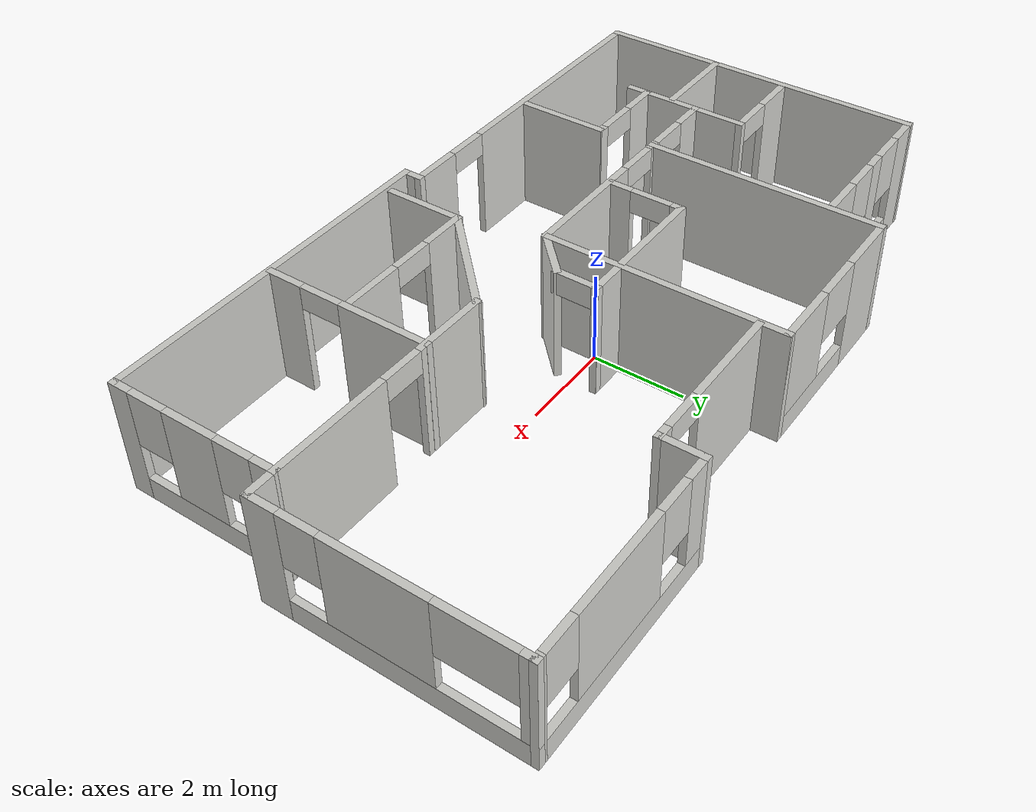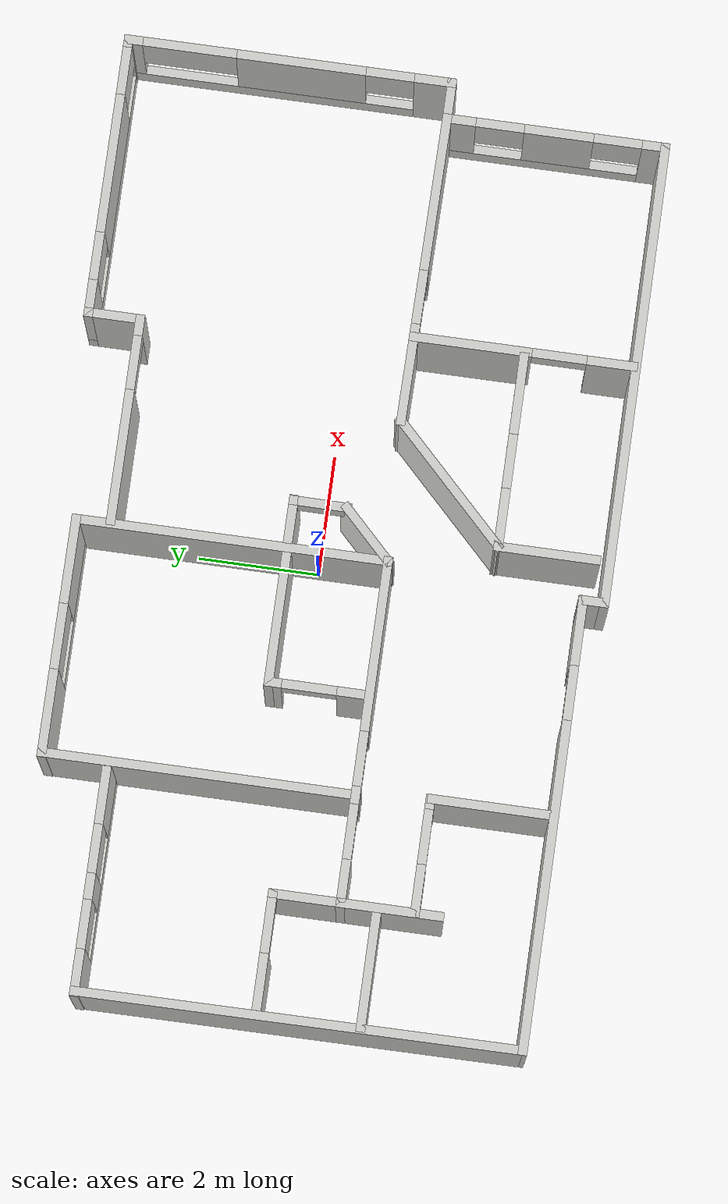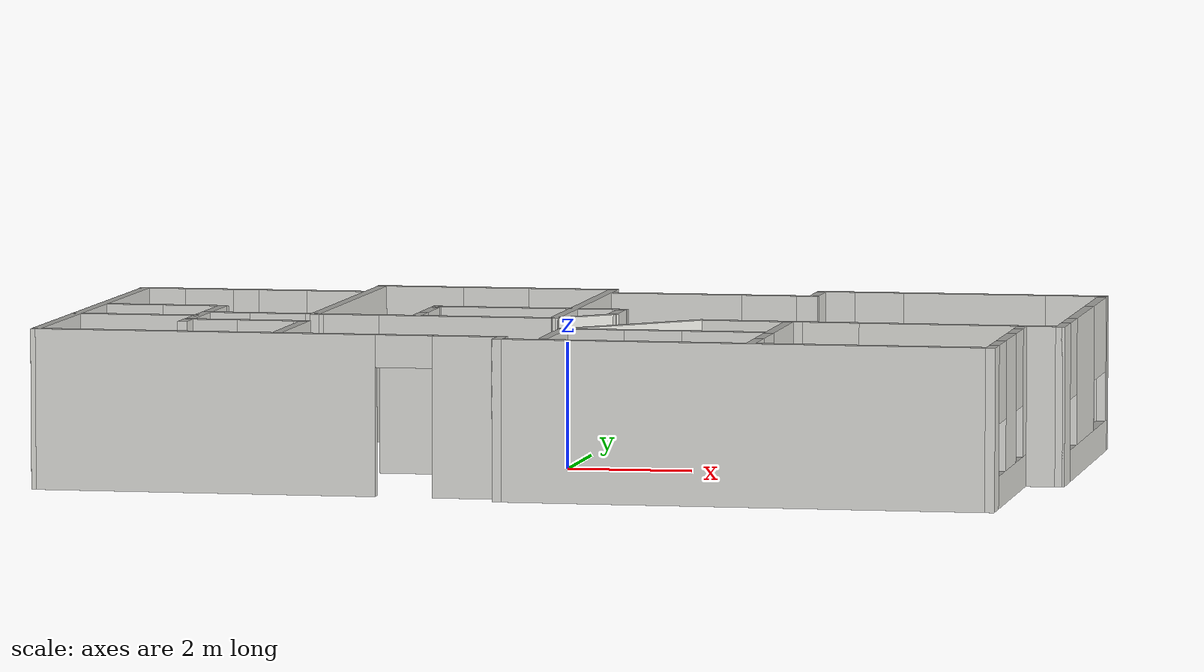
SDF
<?xml version='1.0'?>
<sdf version='1.7'>
  <model name='house1'>
    <pose>0.205163 -0.226995 0 0 -0 0</pose>
    <link name='Wall_0'>
      <collision name='Wall_0_Collision'>
        <geometry>
          <box>
            <size>7.38808 0.15 2.5</size>
          </box>
        </geometry>
        <pose>0 0 1.25 0 -0 0</pose>
      </collision>
      <visual name='Wall_0_Visual'>
        <pose>0 0 1.25 0 -0 0</pose>
        <geometry>
          <box>
            <size>7.38808 0.15 2.5</size>
          </box>
        </geometry>
        <material>
          <script>
            <uri>file://media/materials/scripts/gazebo.material</uri>
            <name>Gazebo/CeilingTiled</name>
          </script>
          <ambient>1 1 1 1</ambient>
        </material>
        <meta>
          <layer>0</layer>
        </meta>
      </visual>
      <pose>-7.76909 -0.505971 0 0 -0 -1.56603</pose>
    </link>
    <link name='Wall_11'>
      <collision name='Wall_11_Collision'>
        <geometry>
          <box>
            <size>1.25 0.15 2.5</size>
          </box>
        </geometry>
        <pose>0 0 1.25 0 -0 0</pose>
      </collision>
      <visual name='Wall_11_Visual'>
        <pose>0 0 1.25 0 -0 0</pose>
        <geometry>
          <box>
            <size>1.25 0.15 2.5</size>
          </box>
        </geometry>
        <material>
          <script>
            <uri>file://media/materials/scripts/gazebo.material</uri>
            <name>Gazebo/CeilingTiled</name>
          </script>
          <ambient>1 1 1 1</ambient>
        </material>
        <meta>
          <layer>0</layer>
        </meta>
      </visual>
      <pose>0.186971 -0.526067 0 0 -0 0.785398</pose>
    </link>
    <link name='Wall_13'>
      <pose>-3.00194 -0.914976 0 0 -0 3.14159</pose>
      <visual name='Wall_13_Visual_0'>
        <pose>-1.43905 0 1.25 0 -0 0</pose>
        <geometry>
          <box>
            <size>2.87189 0.15 2.5</size>
          </box>
        </geometry>
        <material>
          <script>
            <uri>file://media/materials/scripts/gazebo.material</uri>
            <name>Gazebo/CeilingTiled</name>
          </script>
          <ambient>1 1 1 1</ambient>
        </material>
        <meta>
          <layer>0</layer>
        </meta>
      </visual>
      <collision name='Wall_13_Collision_0'>
        <geometry>
          <box>
            <size>2.87189 0.15 2.5</size>
          </box>
        </geometry>
        <pose>-1.43905 0 1.25 0 -0 0</pose>
      </collision>
      <visual name='Wall_13_Visual_1'>
        <pose>1.04201 0 1.25 0 -0 0</pose>
        <geometry>
          <box>
            <size>0.29025 0.15 2.5</size>
          </box>
        </geometry>
        <material>
          <script>
            <uri>file://media/materials/scripts/gazebo.material</uri>
            <name>Gazebo/CeilingTiled</name>
          </script>
          <ambient>1 1 1 1</ambient>
        </material>
        <meta>
          <layer>0</layer>
        </meta>
      </visual>
      <collision name='Wall_13_Collision_1'>
        <geometry>
          <box>
            <size>0.29025 0.15 2.5</size>
          </box>
        </geometry>
        <pose>1.04201 0 1.25 0 -0 0</pose>
      </collision>
      <visual name='Wall_13_Visual_2'>
        <pose>2.48107 0 1.25 0 -0 0</pose>
        <geometry>
          <box>
            <size>0.78786 0.15 2.5</size>
          </box>
        </geometry>
        <material>
          <script>
            <uri>file://media/materials/scripts/gazebo.material</uri>
            <name>Gazebo/CeilingTiled</name>
          </script>
          <ambient>1 1 1 1</ambient>
        </material>
        <meta>
          <layer>0</layer>
        </meta>
      </visual>
      <collision name='Wall_13_Collision_2'>
        <geometry>
          <box>
            <size>0.78786 0.15 2.5</size>
          </box>
        </geometry>
        <pose>2.48107 0 1.25 0 -0 0</pose>
      </collision>
      <visual name='Wall_13_Visual_3'>
        <pose>0.44689 0 2.25 0 -0 0</pose>
        <geometry>
          <box>
            <size>0.9 0.15 0.5</size>
          </box>
        </geometry>
        <material>
          <script>
            <uri>file://media/materials/scripts/gazebo.material</uri>
            <name>Gazebo/CeilingTiled</name>
          </script>
          <ambient>1 1 1 1</ambient>
        </material>
        <meta>
          <layer>0</layer>
        </meta>
      </visual>
      <collision name='Wall_13_Collision_3'>
        <geometry>
          <box>
            <size>0.9 0.15 0.5</size>
          </box>
        </geometry>
        <pose>0.44689 0 2.25 0 -0 0</pose>
      </collision>
      <visual name='Wall_13_Visual_4'>
        <pose>1.63714 0 2.25 0 -0 0</pose>
        <geometry>
          <box>
            <size>0.9 0.15 0.5</size>
          </box>
        </geometry>
        <material>
          <script>
            <uri>file://media/materials/scripts/gazebo.material</uri>
            <name>Gazebo/CeilingTiled</name>
          </script>
          <ambient>1 1 1 1</ambient>
        </material>
        <meta>
          <layer>0</layer>
        </meta>
      </visual>
      <collision name='Wall_13_Collision_4'>
        <geometry>
          <box>
            <size>0.9 0.15 0.5</size>
          </box>
        </geometry>
        <pose>1.63714 0 2.25 0 -0 0</pose>
      </collision>
    </link>
    <link name='Wall_14'>
      <collision name='Wall_14_Collision'>
        <geometry>
          <box>
            <size>1.25 0.15 2.5</size>
          </box>
        </geometry>
        <pose>0 0 1.25 0 -0 0</pose>
      </collision>
      <visual name='Wall_14_Visual'>
        <pose>0 0 1.25 0 -0 0</pose>
        <geometry>
          <box>
            <size>1.25 0.15 2.5</size>
          </box>
        </geometry>
        <material>
          <script>
            <uri>file://media/materials/scripts/gazebo.material</uri>
            <name>Gazebo/CeilingTiled</name>
          </script>
          <ambient>1 1 1 1</ambient>
        </material>
        <meta>
          <layer>0</layer>
        </meta>
      </visual>
      <pose>-5.80194 -0.364976 0 0 -0 1.5708</pose>
    </link>
    <link name='Wall_15'>
      <pose>-6.72694 0.185024 0 0 -0 3.14159</pose>
      <visual name='Wall_15_Visual_0'>
        <pose>-0.929142 0 1.25 0 -0 0</pose>
        <geometry>
          <box>
            <size>0.141715 0.15 2.5</size>
          </box>
        </geometry>
        <material>
          <script>
            <uri>file://media/materials/scripts/gazebo.material</uri>
            <name>Gazebo/CeilingTiled</name>
          </script>
          <ambient>1 1 1 1</ambient>
        </material>
        <meta>
          <layer>0</layer>
        </meta>
      </visual>
      <collision name='Wall_15_Collision_0'>
        <geometry>
          <box>
            <size>0.141715 0.15 2.5</size>
          </box>
        </geometry>
        <pose>-0.929142 0 1.25 0 -0 0</pose>
      </collision>
      <visual name='Wall_15_Visual_1'>
        <pose>0.520858 0 1.25 0 -0 0</pose>
        <geometry>
          <box>
            <size>0.958285 0.15 2.5</size>
          </box>
        </geometry>
        <material>
          <script>
            <uri>file://media/materials/scripts/gazebo.material</uri>
            <name>Gazebo/CeilingTiled</name>
          </script>
          <ambient>1 1 1 1</ambient>
        </material>
        <meta>
          <layer>0</layer>
        </meta>
      </visual>
      <collision name='Wall_15_Collision_1'>
        <geometry>
          <box>
            <size>0.958285 0.15 2.5</size>
          </box>
        </geometry>
        <pose>0.520858 0 1.25 0 -0 0</pose>
      </collision>
      <visual name='Wall_15_Visual_2'>
        <pose>-0.408285 0 2.25 0 -0 0</pose>
        <geometry>
          <box>
            <size>0.9 0.15 0.5</size>
          </box>
        </geometry>
        <material>
          <script>
            <uri>file://media/materials/scripts/gazebo.material</uri>
            <name>Gazebo/CeilingTiled</name>
          </script>
          <ambient>1 1 1 1</ambient>
        </material>
        <meta>
          <layer>0</layer>
        </meta>
      </visual>
      <collision name='Wall_15_Collision_2'>
        <geometry>
          <box>
            <size>0.9 0.15 0.5</size>
          </box>
        </geometry>
        <pose>-0.408285 0 2.25 0 -0 0</pose>
      </collision>
    </link>
    <link name='Wall_17'>
      <collision name='Wall_17_Collision'>
        <geometry>
          <box>
            <size>1.75 0.15 2.5</size>
          </box>
        </geometry>
        <pose>0 0 1.25 0 -0 0</pose>
      </collision>
      <visual name='Wall_17_Visual'>
        <pose>0 0 1.25 0 -0 0</pose>
        <geometry>
          <box>
            <size>1.75 0.15 2.5</size>
          </box>
        </geometry>
        <material>
          <script>
            <uri>file://media/materials/scripts/gazebo.material</uri>
            <name>Gazebo/CeilingTiled</name>
          </script>
          <ambient>1 1 1 1</ambient>
        </material>
        <meta>
          <layer>0</layer>
        </meta>
      </visual>
      <pose>-5.80194 -1.71498 0 0 -0 -1.5708</pose>
    </link>
    <link name='Wall_19'>
      <collision name='Wall_19_Collision'>
        <geometry>
          <box>
            <size>2 0.15 2.5</size>
          </box>
        </geometry>
        <pose>0 0 1.25 0 -0 0</pose>
      </collision>
      <visual name='Wall_19_Visual'>
        <pose>0 0 1.25 0 -0 0</pose>
        <geometry>
          <box>
            <size>2 0.15 2.5</size>
          </box>
        </geometry>
        <material>
          <script>
            <uri>file://media/materials/scripts/gazebo.material</uri>
            <name>Gazebo/CeilingTiled</name>
          </script>
          <ambient>1 1 1 1</ambient>
        </material>
        <meta>
          <layer>0</layer>
        </meta>
      </visual>
      <pose>-6.81077 -1.50781 0 0 -0 0</pose>
    </link>
    <link name='Wall_2'>
      <pose>-5.99784 3.11303 0 0 -0 0</pose>
      <visual name='Wall_2_Visual_0'>
        <pose>-1.48801 0 1.25 0 -0 0</pose>
        <geometry>
          <box>
            <size>0.773978 0.15 2.5</size>
          </box>
        </geometry>
        <material>
          <script>
            <uri>file://media/materials/scripts/gazebo.material</uri>
            <name>Gazebo/CeilingTiled</name>
          </script>
          <ambient>1 1 1 1</ambient>
        </material>
        <meta>
          <layer>0</layer>
        </meta>
      </visual>
      <collision name='Wall_2_Collision_0'>
        <geometry>
          <box>
            <size>0.773978 0.15 2.5</size>
          </box>
        </geometry>
        <pose>-1.48801 0 1.25 0 -0 0</pose>
      </collision>
      <visual name='Wall_2_Visual_1'>
        <pose>0.386989 0 0.25 0 -0 0</pose>
        <geometry>
          <box>
            <size>2.97602 0.15 0.5</size>
          </box>
        </geometry>
        <material>
          <script>
            <uri>file://media/materials/scripts/gazebo.material</uri>
            <name>Gazebo/CeilingTiled</name>
          </script>
          <ambient>1 1 1 1</ambient>
        </material>
        <meta>
          <layer>0</layer>
        </meta>
      </visual>
      <collision name='Wall_2_Collision_1'>
        <geometry>
          <box>
            <size>2.97602 0.15 0.5</size>
          </box>
        </geometry>
        <pose>0.386989 0 0.25 0 -0 0</pose>
      </collision>
      <visual name='Wall_2_Visual_2'>
        <pose>-0.086059 0 1.5 0 -0 0</pose>
        <geometry>
          <box>
            <size>0.429925 0.15 2</size>
          </box>
        </geometry>
        <material>
          <script>
            <uri>file://media/materials/scripts/gazebo.material</uri>
            <name>Gazebo/CeilingTiled</name>
          </script>
          <ambient>1 1 1 1</ambient>
        </material>
        <meta>
          <layer>0</layer>
        </meta>
      </visual>
      <collision name='Wall_2_Collision_2'>
        <geometry>
          <box>
            <size>0.429925 0.15 2</size>
          </box>
        </geometry>
        <pose>-0.086059 0 1.5 0 -0 0</pose>
      </collision>
      <visual name='Wall_2_Visual_3'>
        <pose>1.40195 0 1.5 0 -0 0</pose>
        <geometry>
          <box>
            <size>0.946097 0.15 2</size>
          </box>
        </geometry>
        <material>
          <script>
            <uri>file://media/materials/scripts/gazebo.material</uri>
            <name>Gazebo/CeilingTiled</name>
          </script>
          <ambient>1 1 1 1</ambient>
        </material>
        <meta>
          <layer>0</layer>
        </meta>
      </visual>
      <collision name='Wall_2_Collision_3'>
        <geometry>
          <box>
            <size>0.946097 0.15 2</size>
          </box>
        </geometry>
        <pose>1.40195 0 1.5 0 -0 0</pose>
      </collision>
      <visual name='Wall_2_Visual_4'>
        <pose>-0.701022 0 1.9 0 -0 0</pose>
        <geometry>
          <box>
            <size>0.8 0.15 1.2</size>
          </box>
        </geometry>
        <material>
          <script>
            <uri>file://media/materials/scripts/gazebo.material</uri>
            <name>Gazebo/CeilingTiled</name>
          </script>
          <ambient>1 1 1 1</ambient>
        </material>
        <meta>
          <layer>0</layer>
        </meta>
      </visual>
      <collision name='Wall_2_Collision_4'>
        <geometry>
          <box>
            <size>0.8 0.15 1.2</size>
          </box>
        </geometry>
        <pose>-0.701022 0 1.9 0 -0 0</pose>
      </collision>
      <visual name='Wall_2_Visual_5'>
        <pose>0.528903 0 1.9 0 -0 0</pose>
        <geometry>
          <box>
            <size>0.8 0.15 1.2</size>
          </box>
        </geometry>
        <material>
          <script>
            <uri>file://media/materials/scripts/gazebo.material</uri>
            <name>Gazebo/CeilingTiled</name>
          </script>
          <ambient>1 1 1 1</ambient>
        </material>
        <meta>
          <layer>0</layer>
        </meta>
      </visual>
      <collision name='Wall_2_Collision_5'>
        <geometry>
          <box>
            <size>0.8 0.15 1.2</size>
          </box>
        </geometry>
        <pose>0.528903 0 1.9 0 -0 0</pose>
      </collision>
    </link>
    <link name='Wall_21'>
      <pose>-4.86727 -2.1173 0 0 -0 0</pose>
      <visual name='Wall_21_Visual_0'>
        <pose>-0.570282 0 1.25 0 -0 0</pose>
        <geometry>
          <box>
            <size>0.859435 0.15 2.5</size>
          </box>
        </geometry>
        <material>
          <script>
            <uri>file://media/materials/scripts/gazebo.material</uri>
            <name>Gazebo/CeilingTiled</name>
          </script>
          <ambient>1 1 1 1</ambient>
        </material>
        <meta>
          <layer>0</layer>
        </meta>
      </visual>
      <collision name='Wall_21_Collision_0'>
        <geometry>
          <box>
            <size>0.859435 0.15 2.5</size>
          </box>
        </geometry>
        <pose>-0.570282 0 1.25 0 -0 0</pose>
      </collision>
      <visual name='Wall_21_Visual_1'>
        <pose>0.879718 0 1.25 0 -0 0</pose>
        <geometry>
          <box>
            <size>0.240565 0.15 2.5</size>
          </box>
        </geometry>
        <material>
          <script>
            <uri>file://media/materials/scripts/gazebo.material</uri>
            <name>Gazebo/CeilingTiled</name>
          </script>
          <ambient>1 1 1 1</ambient>
        </material>
        <meta>
          <layer>0</layer>
        </meta>
      </visual>
      <collision name='Wall_21_Collision_1'>
        <geometry>
          <box>
            <size>0.240565 0.15 2.5</size>
          </box>
        </geometry>
        <pose>0.879718 0 1.25 0 -0 0</pose>
      </collision>
      <visual name='Wall_21_Visual_2'>
        <pose>0.309435 0 2.25 0 -0 0</pose>
        <geometry>
          <box>
            <size>0.9 0.15 0.5</size>
          </box>
        </geometry>
        <material>
          <script>
            <uri>file://media/materials/scripts/gazebo.material</uri>
            <name>Gazebo/CeilingTiled</name>
          </script>
          <ambient>1 1 1 1</ambient>
        </material>
        <meta>
          <layer>0</layer>
        </meta>
      </visual>
      <collision name='Wall_21_Collision_2'>
        <geometry>
          <box>
            <size>0.9 0.15 0.5</size>
          </box>
        </geometry>
        <pose>0.309435 0 2.25 0 -0 0</pose>
      </collision>
    </link>
    <link name='Wall_23'>
      <collision name='Wall_23_Collision'>
        <geometry>
          <box>
            <size>2 0.15 2.5</size>
          </box>
        </geometry>
        <pose>0 0 1.25 0 -0 0</pose>
      </collision>
      <visual name='Wall_23_Visual'>
        <pose>0 0 1.25 0 -0 0</pose>
        <geometry>
          <box>
            <size>2 0.15 2.5</size>
          </box>
        </geometry>
        <material>
          <script>
            <uri>file://media/materials/scripts/gazebo.material</uri>
            <name>Gazebo/CeilingTiled</name>
          </script>
          <ambient>1 1 1 1</ambient>
        </material>
        <meta>
          <layer>0</layer>
        </meta>
      </visual>
      <pose>-3.94116 -3.06501 0 0 -0 -1.5708</pose>
    </link>
    <link name='Wall_25'>
      <pose>-4.07684 -4.12497 0 0 -0 0</pose>
      <visual name='Wall_25_Visual_0'>
        <pose>-1.02494 0 1.25 0 -0 0</pose>
        <geometry>
          <box>
            <size>5.45011 0.15 2.5</size>
          </box>
        </geometry>
        <material>
          <script>
            <uri>file://media/materials/scripts/gazebo.material</uri>
            <name>Gazebo/CeilingTiled</name>
          </script>
          <ambient>1 1 1 1</ambient>
        </material>
        <meta>
          <layer>0</layer>
        </meta>
      </visual>
      <collision name='Wall_25_Collision_0'>
        <geometry>
          <box>
            <size>5.45011 0.15 2.5</size>
          </box>
        </geometry>
        <pose>-1.02494 0 1.25 0 -0 0</pose>
      </collision>
      <visual name='Wall_25_Visual_1'>
        <pose>3.17506 0 1.25 0 -0 0</pose>
        <geometry>
          <box>
            <size>1.14989 0.15 2.5</size>
          </box>
        </geometry>
        <material>
          <script>
            <uri>file://media/materials/scripts/gazebo.material</uri>
            <name>Gazebo/CeilingTiled</name>
          </script>
          <ambient>1 1 1 1</ambient>
        </material>
        <meta>
          <layer>0</layer>
        </meta>
      </visual>
      <collision name='Wall_25_Collision_1'>
        <geometry>
          <box>
            <size>1.14989 0.15 2.5</size>
          </box>
        </geometry>
        <pose>3.17506 0 1.25 0 -0 0</pose>
      </collision>
      <visual name='Wall_25_Visual_2'>
        <pose>2.15011 0 2.25 0 -0 0</pose>
        <geometry>
          <box>
            <size>0.9 0.15 0.5</size>
          </box>
        </geometry>
        <material>
          <script>
            <uri>file://media/materials/scripts/gazebo.material</uri>
            <name>Gazebo/CeilingTiled</name>
          </script>
          <ambient>1 1 1 1</ambient>
        </material>
        <meta>
          <layer>0</layer>
        </meta>
      </visual>
      <collision name='Wall_25_Collision_2'>
        <geometry>
          <box>
            <size>0.9 0.15 0.5</size>
          </box>
        </geometry>
        <pose>2.15011 0 2.25 0 -0 0</pose>
      </collision>
    </link>
    <link name='Wall_29'>
      <collision name='Wall_29_Collision'>
        <geometry>
          <box>
            <size>0.5 0.15 2.5</size>
          </box>
        </geometry>
        <pose>0 0 1.25 0 -0 0</pose>
      </collision>
      <visual name='Wall_29_Visual'>
        <pose>0 0 1.25 0 -0 0</pose>
        <geometry>
          <box>
            <size>0.5 0.15 2.5</size>
          </box>
        </geometry>
        <material>
          <script>
            <uri>file://media/materials/scripts/gazebo.material</uri>
            <name>Gazebo/CeilingTiled</name>
          </script>
          <ambient>1 1 1 1</ambient>
        </material>
        <meta>
          <layer>0</layer>
        </meta>
      </visual>
      <pose>-0.401838 -4.29997 0 0 -0 -1.5708</pose>
    </link>
    <link name='Wall_30'>
      <collision name='Wall_30_Collision'>
        <geometry>
          <box>
            <size>7.75 0.15 2.5</size>
          </box>
        </geometry>
        <pose>0 0 1.25 0 -0 0</pose>
      </collision>
      <visual name='Wall_30_Visual'>
        <pose>0 0 1.25 0 -0 0</pose>
        <geometry>
          <box>
            <size>7.75 0.15 2.5</size>
          </box>
        </geometry>
        <material>
          <script>
            <uri>file://media/materials/scripts/gazebo.material</uri>
            <name>Gazebo/CeilingTiled</name>
          </script>
          <ambient>1 1 1 1</ambient>
        </material>
        <meta>
          <layer>0</layer>
        </meta>
      </visual>
      <pose>3.39816 -4.47497 0 0 -0 0</pose>
    </link>
    <link name='Wall_31'>
      <pose>7.198 -2.67499 0 0 -0 1.57089</pose>
      <visual name='Wall_31_Visual_0'>
        <pose>-1.64864 0 1.25 0 -0 0</pose>
        <geometry>
          <box>
            <size>0.452715 0.15 2.5</size>
          </box>
        </geometry>
        <material>
          <script>
            <uri>file://media/materials/scripts/gazebo.material</uri>
            <name>Gazebo/CeilingTiled</name>
          </script>
          <ambient>1 1 1 1</ambient>
        </material>
        <meta>
          <layer>0</layer>
        </meta>
      </visual>
      <collision name='Wall_31_Collision_0'>
        <geometry>
          <box>
            <size>0.452715 0.15 2.5</size>
          </box>
        </geometry>
        <pose>-1.64864 0 1.25 0 -0 0</pose>
      </collision>
      <visual name='Wall_31_Visual_1'>
        <pose>0.226358 0 0.25 0 -0 0</pose>
        <geometry>
          <box>
            <size>3.29729 0.15 0.5</size>
          </box>
        </geometry>
        <material>
          <script>
            <uri>file://media/materials/scripts/gazebo.material</uri>
            <name>Gazebo/CeilingTiled</name>
          </script>
          <ambient>1 1 1 1</ambient>
        </material>
        <meta>
          <layer>0</layer>
        </meta>
      </visual>
      <collision name='Wall_31_Collision_1'>
        <geometry>
          <box>
            <size>3.29729 0.15 0.5</size>
          </box>
        </geometry>
        <pose>0.226358 0 0.25 0 -0 0</pose>
      </collision>
      <visual name='Wall_31_Visual_2'>
        <pose>-0.050794 0 1.5 0 -0 0</pose>
        <geometry>
          <box>
            <size>1.14298 0.15 2</size>
          </box>
        </geometry>
        <material>
          <script>
            <uri>file://media/materials/scripts/gazebo.material</uri>
            <name>Gazebo/CeilingTiled</name>
          </script>
          <ambient>1 1 1 1</ambient>
        </material>
        <meta>
          <layer>0</layer>
        </meta>
      </visual>
      <collision name='Wall_31_Collision_2'>
        <geometry>
          <box>
            <size>1.14298 0.15 2</size>
          </box>
        </geometry>
        <pose>-0.050794 0 1.5 0 -0 0</pose>
      </collision>
      <visual name='Wall_31_Visual_3'>
        <pose>1.59785 0 1.5 0 -0 0</pose>
        <geometry>
          <box>
            <size>0.554303 0.15 2</size>
          </box>
        </geometry>
        <material>
          <script>
            <uri>file://media/materials/scripts/gazebo.material</uri>
            <name>Gazebo/CeilingTiled</name>
          </script>
          <ambient>1 1 1 1</ambient>
        </material>
        <meta>
          <layer>0</layer>
        </meta>
      </visual>
      <collision name='Wall_31_Collision_3'>
        <geometry>
          <box>
            <size>0.554303 0.15 2</size>
          </box>
        </geometry>
        <pose>1.59785 0 1.5 0 -0 0</pose>
      </collision>
      <visual name='Wall_31_Visual_4'>
        <pose>-1.02229 0 1.9 0 -0 0</pose>
        <geometry>
          <box>
            <size>0.8 0.15 1.2</size>
          </box>
        </geometry>
        <material>
          <script>
            <uri>file://media/materials/scripts/gazebo.material</uri>
            <name>Gazebo/CeilingTiled</name>
          </script>
          <ambient>1 1 1 1</ambient>
        </material>
        <meta>
          <layer>0</layer>
        </meta>
      </visual>
      <collision name='Wall_31_Collision_4'>
        <geometry>
          <box>
            <size>0.8 0.15 1.2</size>
          </box>
        </geometry>
        <pose>-1.02229 0 1.9 0 -0 0</pose>
      </collision>
      <visual name='Wall_31_Visual_5'>
        <pose>0.920697 0 1.9 0 -0 0</pose>
        <geometry>
          <box>
            <size>0.8 0.15 1.2</size>
          </box>
        </geometry>
        <material>
          <script>
            <uri>file://media/materials/scripts/gazebo.material</uri>
            <name>Gazebo/CeilingTiled</name>
          </script>
          <ambient>1 1 1 1</ambient>
        </material>
        <meta>
          <layer>0</layer>
        </meta>
      </visual>
      <collision name='Wall_31_Collision_5'>
        <geometry>
          <box>
            <size>0.8 0.15 1.2</size>
          </box>
        </geometry>
        <pose>0.920697 0 1.9 0 -0 0</pose>
      </collision>
    </link>
    <link name='Wall_32'>
      <pose>4.65734 -0.842505 0 0 -0 3.1288</pose>
      <visual name='Wall_32_Visual_0'>
        <pose>-1.29738 0 1.25 0 -0 0</pose>
        <geometry>
          <box>
            <size>2.63693 0.15 2.5</size>
          </box>
        </geometry>
        <material>
          <script>
            <uri>file://media/materials/scripts/gazebo.material</uri>
            <name>Gazebo/CeilingTiled</name>
          </script>
          <ambient>1 1 1 1</ambient>
        </material>
        <meta>
          <layer>0</layer>
        </meta>
      </visual>
      <collision name='Wall_32_Collision_0'>
        <geometry>
          <box>
            <size>2.63693 0.15 2.5</size>
          </box>
        </geometry>
        <pose>-1.29738 0 1.25 0 -0 0</pose>
      </collision>
      <visual name='Wall_32_Visual_1'>
        <pose>1.76847 0 1.25 0 -0 0</pose>
        <geometry>
          <box>
            <size>1.69476 0.15 2.5</size>
          </box>
        </geometry>
        <material>
          <script>
            <uri>file://media/materials/scripts/gazebo.material</uri>
            <name>Gazebo/CeilingTiled</name>
          </script>
          <ambient>1 1 1 1</ambient>
        </material>
        <meta>
          <layer>0</layer>
        </meta>
      </visual>
      <collision name='Wall_32_Collision_1'>
        <geometry>
          <box>
            <size>1.69476 0.15 2.5</size>
          </box>
        </geometry>
        <pose>1.76847 0 1.25 0 -0 0</pose>
      </collision>
      <visual name='Wall_32_Visual_2'>
        <pose>0.471089 0 2.25 0 -0 0</pose>
        <geometry>
          <box>
            <size>0.9 0.15 0.5</size>
          </box>
        </geometry>
        <material>
          <script>
            <uri>file://media/materials/scripts/gazebo.material</uri>
            <name>Gazebo/CeilingTiled</name>
          </script>
          <ambient>1 1 1 1</ambient>
        </material>
        <meta>
          <layer>0</layer>
        </meta>
      </visual>
      <collision name='Wall_32_Collision_2'>
        <geometry>
          <box>
            <size>0.9 0.15 0.5</size>
          </box>
        </geometry>
        <pose>0.471089 0 2.25 0 -0 0</pose>
      </collision>
    </link>
    <link name='Wall_33'>
      <collision name='Wall_33_Collision'>
        <geometry>
          <box>
            <size>2.75 0.15 2.5</size>
          </box>
        </geometry>
        <pose>0 0 1.25 0 -0 0</pose>
      </collision>
      <visual name='Wall_33_Visual'>
        <pose>0 0 1.25 0 -0 0</pose>
        <geometry>
          <box>
            <size>2.75 0.15 2.5</size>
          </box>
        </geometry>
        <material>
          <script>
            <uri>file://media/materials/scripts/gazebo.material</uri>
            <name>Gazebo/CeilingTiled</name>
          </script>
          <ambient>1 1 1 1</ambient>
        </material>
        <meta>
          <layer>0</layer>
        </meta>
      </visual>
      <pose>1.19784 -1.72951 0 0 -0 -2.35592</pose>
    </link>
    <link name='Wall_37'>
      <collision name='Wall_37_Collision'>
        <geometry>
          <box>
            <size>1.75 0.15 2.5</size>
          </box>
        </geometry>
        <pose>0 0 1.25 0 -0 0</pose>
      </collision>
      <visual name='Wall_37_Visual'>
        <pose>0 0 1.25 0 -0 0</pose>
        <geometry>
          <box>
            <size>1.75 0.15 2.5</size>
          </box>
        </geometry>
        <material>
          <script>
            <uri>file://media/materials/scripts/gazebo.material</uri>
            <name>Gazebo/CeilingTiled</name>
          </script>
          <ambient>1 1 1 1</ambient>
        </material>
        <meta>
          <layer>0</layer>
        </meta>
      </visual>
      <pose>0.278622 -3.44887 0 0 -0 -1.57106</pose>
    </link>
    <link name='Wall_39'>
      <collision name='Wall_39_Collision'>
        <geometry>
          <box>
            <size>0.75 0.15 2.5</size>
          </box>
        </geometry>
        <pose>0 0 1.25 0 -0 0</pose>
      </collision>
      <visual name='Wall_39_Visual'>
        <pose>0 0 1.25 0 -0 0</pose>
        <geometry>
          <box>
            <size>0.75 0.15 2.5</size>
          </box>
        </geometry>
        <material>
          <script>
            <uri>file://media/materials/scripts/gazebo.material</uri>
            <name>Gazebo/CeilingTiled</name>
          </script>
          <ambient>1 1 1 1</ambient>
        </material>
        <meta>
          <layer>0</layer>
        </meta>
      </visual>
      <pose>7.49784 -0.875005 0 0 -0 0</pose>
    </link>
    <link name='Wall_4'>
      <collision name='Wall_4_Collision'>
        <geometry>
          <box>
            <size>5.25083 0.15 2.5</size>
          </box>
        </geometry>
        <pose>0 0 1.25 0 -0 0</pose>
      </collision>
      <visual name='Wall_4_Visual'>
        <pose>0 0 1.25 0 -0 0</pose>
        <geometry>
          <box>
            <size>5.25083 0.15 2.5</size>
          </box>
        </geometry>
        <material>
          <script>
            <uri>file://media/materials/scripts/gazebo.material</uri>
            <name>Gazebo/CeilingTiled</name>
          </script>
          <ambient>1 1 1 1</ambient>
        </material>
        <meta>
          <layer>0</layer>
        </meta>
      </visual>
      <pose>-4.04529 1.63502 0 0 -0 -1.57077</pose>
    </link>
    <link name='Wall_40'>
      <pose>7.79784 1.8 0 0 -0 1.5708</pose>
      <visual name='Wall_40_Visual_0'>
        <pose>-2.40357 0 1.25 0 -0 0</pose>
        <geometry>
          <box>
            <size>0.692867 0.15 2.5</size>
          </box>
        </geometry>
        <material>
          <script>
            <uri>file://media/materials/scripts/gazebo.material</uri>
            <name>Gazebo/CeilingTiled</name>
          </script>
          <ambient>1 1 1 1</ambient>
        </material>
        <meta>
          <layer>0</layer>
        </meta>
      </visual>
      <collision name='Wall_40_Collision_0'>
        <geometry>
          <box>
            <size>0.692867 0.15 2.5</size>
          </box>
        </geometry>
        <pose>-2.40357 0 1.25 0 -0 0</pose>
      </collision>
      <visual name='Wall_40_Visual_1'>
        <pose>0.346434 0 0.25 0 -0 0</pose>
        <geometry>
          <box>
            <size>4.80713 0.15 0.5</size>
          </box>
        </geometry>
        <material>
          <script>
            <uri>file://media/materials/scripts/gazebo.material</uri>
            <name>Gazebo/CeilingTiled</name>
          </script>
          <ambient>1 1 1 1</ambient>
        </material>
        <meta>
          <layer>0</layer>
        </meta>
      </visual>
      <collision name='Wall_40_Collision_1'>
        <geometry>
          <box>
            <size>4.80713 0.15 0.5</size>
          </box>
        </geometry>
        <pose>0.346434 0 0.25 0 -0 0</pose>
      </collision>
      <visual name='Wall_40_Visual_2'>
        <pose>-0.18727 0 1.5 0 -0 0</pose>
        <geometry>
          <box>
            <size>2.13972 0.15 2</size>
          </box>
        </geometry>
        <material>
          <script>
            <uri>file://media/materials/scripts/gazebo.material</uri>
            <name>Gazebo/CeilingTiled</name>
          </script>
          <ambient>1 1 1 1</ambient>
        </material>
        <meta>
          <layer>0</layer>
        </meta>
      </visual>
      <collision name='Wall_40_Collision_2'>
        <geometry>
          <box>
            <size>2.13972 0.15 2</size>
          </box>
        </geometry>
        <pose>-0.18727 0 1.5 0 -0 0</pose>
      </collision>
      <visual name='Wall_40_Visual_3'>
        <pose>2.59321 0 1.5 0 -0 0</pose>
        <geometry>
          <box>
            <size>0.313583 0.15 2</size>
          </box>
        </geometry>
        <material>
          <script>
            <uri>file://media/materials/scripts/gazebo.material</uri>
            <name>Gazebo/CeilingTiled</name>
          </script>
          <ambient>1 1 1 1</ambient>
        </material>
        <meta>
          <layer>0</layer>
        </meta>
      </visual>
      <collision name='Wall_40_Collision_3'>
        <geometry>
          <box>
            <size>0.313583 0.15 2</size>
          </box>
        </geometry>
        <pose>2.59321 0 1.5 0 -0 0</pose>
      </collision>
      <visual name='Wall_40_Visual_4'>
        <pose>-1.65713 0 1.9 0 -0 0</pose>
        <geometry>
          <box>
            <size>0.8 0.15 1.2</size>
          </box>
        </geometry>
        <material>
          <script>
            <uri>file://media/materials/scripts/gazebo.material</uri>
            <name>Gazebo/CeilingTiled</name>
          </script>
          <ambient>1 1 1 1</ambient>
        </material>
        <meta>
          <layer>0</layer>
        </meta>
      </visual>
      <collision name='Wall_40_Collision_4'>
        <geometry>
          <box>
            <size>0.8 0.15 1.2</size>
          </box>
        </geometry>
        <pose>-1.65713 0 1.9 0 -0 0</pose>
      </collision>
      <visual name='Wall_40_Visual_5'>
        <pose>1.65951 0 1.9 0 -0 0</pose>
        <geometry>
          <box>
            <size>1.55383 0.15 1.2</size>
          </box>
        </geometry>
        <material>
          <script>
            <uri>file://media/materials/scripts/gazebo.material</uri>
            <name>Gazebo/CeilingTiled</name>
          </script>
          <ambient>1 1 1 1</ambient>
        </material>
        <meta>
          <layer>0</layer>
        </meta>
      </visual>
      <collision name='Wall_40_Collision_5'>
        <geometry>
          <box>
            <size>1.55383 0.15 1.2</size>
          </box>
        </geometry>
        <pose>1.65951 0 1.9 0 -0 0</pose>
      </collision>
    </link>
    <link name='Wall_41'>
      <pose>5.49784 4.47499 0 0 -0 3.14159</pose>
      <visual name='Wall_41_Visual_0'>
        <pose>-2.27195 0 1.25 0 -0 0</pose>
        <geometry>
          <box>
            <size>0.206098 0.15 2.5</size>
          </box>
        </geometry>
        <material>
          <script>
            <uri>file://media/materials/scripts/gazebo.material</uri>
            <name>Gazebo/CeilingTiled</name>
          </script>
          <ambient>1 1 1 1</ambient>
        </material>
        <meta>
          <layer>0</layer>
        </meta>
      </visual>
      <collision name='Wall_41_Collision_0'>
        <geometry>
          <box>
            <size>0.206098 0.15 2.5</size>
          </box>
        </geometry>
        <pose>-2.27195 0 1.25 0 -0 0</pose>
      </collision>
      <visual name='Wall_41_Visual_1'>
        <pose>0.103049 0 0.25 0 -0 0</pose>
        <geometry>
          <box>
            <size>4.5439 0.15 0.5</size>
          </box>
        </geometry>
        <material>
          <script>
            <uri>file://media/materials/scripts/gazebo.material</uri>
            <name>Gazebo/CeilingTiled</name>
          </script>
          <ambient>1 1 1 1</ambient>
        </material>
        <meta>
          <layer>0</layer>
        </meta>
      </visual>
      <collision name='Wall_41_Collision_1'>
        <geometry>
          <box>
            <size>4.5439 0.15 0.5</size>
          </box>
        </geometry>
        <pose>0.103049 0 0.25 0 -0 0</pose>
      </collision>
      <visual name='Wall_41_Visual_2'>
        <pose>-0.208352 0 1.5 0 -0 0</pose>
        <geometry>
          <box>
            <size>2.3211 0.15 2</size>
          </box>
        </geometry>
        <material>
          <script>
            <uri>file://media/materials/scripts/gazebo.material</uri>
            <name>Gazebo/CeilingTiled</name>
          </script>
          <ambient>1 1 1 1</ambient>
        </material>
        <meta>
          <layer>0</layer>
        </meta>
      </visual>
      <collision name='Wall_41_Collision_2'>
        <geometry>
          <box>
            <size>2.3211 0.15 2</size>
          </box>
        </geometry>
        <pose>-0.208352 0 1.5 0 -0 0</pose>
      </collision>
      <visual name='Wall_41_Visual_3'>
        <pose>2.0636 0 1.5 0 -0 0</pose>
        <geometry>
          <box>
            <size>0.622802 0.15 2</size>
          </box>
        </geometry>
        <material>
          <script>
            <uri>file://media/materials/scripts/gazebo.material</uri>
            <name>Gazebo/CeilingTiled</name>
          </script>
          <ambient>1 1 1 1</ambient>
        </material>
        <meta>
          <layer>0</layer>
        </meta>
      </visual>
      <collision name='Wall_41_Collision_3'>
        <geometry>
          <box>
            <size>0.622802 0.15 2</size>
          </box>
        </geometry>
        <pose>2.0636 0 1.5 0 -0 0</pose>
      </collision>
      <visual name='Wall_41_Visual_4'>
        <pose>-1.7689 0 1.9 0 -0 0</pose>
        <geometry>
          <box>
            <size>0.8 0.15 1.2</size>
          </box>
        </geometry>
        <material>
          <script>
            <uri>file://media/materials/scripts/gazebo.material</uri>
            <name>Gazebo/CeilingTiled</name>
          </script>
          <ambient>1 1 1 1</ambient>
        </material>
        <meta>
          <layer>0</layer>
        </meta>
      </visual>
      <collision name='Wall_41_Collision_4'>
        <geometry>
          <box>
            <size>0.8 0.15 1.2</size>
          </box>
        </geometry>
        <pose>-1.7689 0 1.9 0 -0 0</pose>
      </collision>
      <visual name='Wall_41_Visual_5'>
        <pose>1.3522 0 1.9 0 -0 0</pose>
        <geometry>
          <box>
            <size>0.8 0.15 1.2</size>
          </box>
        </geometry>
        <material>
          <script>
            <uri>file://media/materials/scripts/gazebo.material</uri>
            <name>Gazebo/CeilingTiled</name>
          </script>
          <ambient>1 1 1 1</ambient>
        </material>
        <meta>
          <layer>0</layer>
        </meta>
      </visual>
      <collision name='Wall_41_Collision_5'>
        <geometry>
          <box>
            <size>0.8 0.15 1.2</size>
          </box>
        </geometry>
        <pose>1.3522 0 1.9 0 -0 0</pose>
      </collision>
    </link>
    <link name='Wall_42'>
      <collision name='Wall_42_Collision'>
        <geometry>
          <box>
            <size>1 0.15 2.5</size>
          </box>
        </geometry>
        <pose>0 0 1.25 0 -0 0</pose>
      </collision>
      <visual name='Wall_42_Visual'>
        <pose>0 0 1.25 0 -0 0</pose>
        <geometry>
          <box>
            <size>1 0.15 2.5</size>
          </box>
        </geometry>
        <material>
          <script>
            <uri>file://media/materials/scripts/gazebo.material</uri>
            <name>Gazebo/CeilingTiled</name>
          </script>
          <ambient>1 1 1 1</ambient>
        </material>
        <meta>
          <layer>0</layer>
        </meta>
      </visual>
      <pose>3.19784 4.05 0 0 -0 -1.5708</pose>
    </link>
    <link name='Wall_43'>
      <pose>1.52284 3.625 0 0 -0 3.14159</pose>
      <visual name='Wall_43_Visual_0'>
        <pose>-1.57657 0 1.25 0 -0 0</pose>
        <geometry>
          <box>
            <size>0.346865 0.15 2.5</size>
          </box>
        </geometry>
        <material>
          <script>
            <uri>file://media/materials/scripts/gazebo.material</uri>
            <name>Gazebo/CeilingTiled</name>
          </script>
          <ambient>1 1 1 1</ambient>
        </material>
        <meta>
          <layer>0</layer>
        </meta>
      </visual>
      <collision name='Wall_43_Collision_0'>
        <geometry>
          <box>
            <size>0.346865 0.15 2.5</size>
          </box>
        </geometry>
        <pose>-1.57657 0 1.25 0 -0 0</pose>
      </collision>
      <visual name='Wall_43_Visual_1'>
        <pose>0.623433 0 1.25 0 -0 0</pose>
        <geometry>
          <box>
            <size>2.25313 0.15 2.5</size>
          </box>
        </geometry>
        <material>
          <script>
            <uri>file://media/materials/scripts/gazebo.material</uri>
            <name>Gazebo/CeilingTiled</name>
          </script>
          <ambient>1 1 1 1</ambient>
        </material>
        <meta>
          <layer>0</layer>
        </meta>
      </visual>
      <collision name='Wall_43_Collision_1'>
        <geometry>
          <box>
            <size>2.25313 0.15 2.5</size>
          </box>
        </geometry>
        <pose>0.623433 0 1.25 0 -0 0</pose>
      </collision>
      <visual name='Wall_43_Visual_2'>
        <pose>-0.953135 0 2.25 0 -0 0</pose>
        <geometry>
          <box>
            <size>0.9 0.15 0.5</size>
          </box>
        </geometry>
        <material>
          <script>
            <uri>file://media/materials/scripts/gazebo.material</uri>
            <name>Gazebo/CeilingTiled</name>
          </script>
          <ambient>1 1 1 1</ambient>
        </material>
        <meta>
          <layer>0</layer>
        </meta>
      </visual>
      <collision name='Wall_43_Collision_2'>
        <geometry>
          <box>
            <size>0.9 0.15 0.5</size>
          </box>
        </geometry>
        <pose>-0.953135 0 2.25 0 -0 0</pose>
      </collision>
    </link>
    <link name='Wall_45'>
      <collision name='Wall_45_Collision'>
        <geometry>
          <box>
            <size>0.8 0.15 2.5</size>
          </box>
        </geometry>
        <pose>0 0 1.25 0 -0 0</pose>
      </collision>
      <visual name='Wall_45_Visual'>
        <pose>0 0 1.25 0 -0 0</pose>
        <geometry>
          <box>
            <size>0.8 0.15 2.5</size>
          </box>
        </geometry>
        <material>
          <script>
            <uri>file://media/materials/scripts/gazebo.material</uri>
            <name>Gazebo/CeilingTiled</name>
          </script>
          <ambient>1 1 1 1</ambient>
        </material>
        <meta>
          <layer>0</layer>
        </meta>
      </visual>
      <pose>0.26638 0.735842 0 0 -0 0</pose>
    </link>
    <link name='Wall_46'>
      <pose>0.57788 0.299342 0 0 -0 -1.57538</pose>
      <visual name='Wall_46_Visual_0'>
        <pose>-0.440666 0 1.25 0 -0 0</pose>
        <geometry>
          <box>
            <size>0.142517 0.15 2.5</size>
          </box>
        </geometry>
        <material>
          <script>
            <uri>file://media/materials/scripts/gazebo.material</uri>
            <name>Gazebo/CeilingTiled</name>
          </script>
          <ambient>1 1 1 1</ambient>
        </material>
        <meta>
          <layer>0</layer>
        </meta>
      </visual>
      <collision name='Wall_46_Collision_0'>
        <geometry>
          <box>
            <size>0.142517 0.15 2.5</size>
          </box>
        </geometry>
        <pose>-0.440666 0 1.25 0 -0 0</pose>
      </collision>
      <visual name='Wall_46_Visual_1'>
        <pose>0.071259 0 2.25 0 -0 0</pose>
        <geometry>
          <box>
            <size>0.881331 0.15 0.5</size>
          </box>
        </geometry>
        <material>
          <script>
            <uri>file://media/materials/scripts/gazebo.material</uri>
            <name>Gazebo/CeilingTiled</name>
          </script>
          <ambient>1 1 1 1</ambient>
        </material>
        <meta>
          <layer>0</layer>
        </meta>
      </visual>
      <collision name='Wall_46_Collision_1'>
        <geometry>
          <box>
            <size>0.881331 0.15 0.5</size>
          </box>
        </geometry>
        <pose>0.071259 0 2.25 0 -0 0</pose>
      </collision>
    </link>
    <link name='Wall_48'>
      <collision name='Wall_48_Collision'>
        <geometry>
          <box>
            <size>2.25 0.15 2.5</size>
          </box>
        </geometry>
        <pose>0 0 1.25 0 -0 0</pose>
      </collision>
      <visual name='Wall_48_Visual'>
        <pose>0 0 1.25 0 -0 0</pose>
        <geometry>
          <box>
            <size>2.25 0.15 2.5</size>
          </box>
        </geometry>
        <material>
          <script>
            <uri>file://media/materials/scripts/gazebo.material</uri>
            <name>Gazebo/CeilingTiled</name>
          </script>
          <ambient>1 1 1 1</ambient>
        </material>
        <meta>
          <layer>0</layer>
        </meta>
      </visual>
      <pose>-1.3645 0.727137 0 0 -0 3.14159</pose>
    </link>
    <link name='Wall_49'>
      <pose>-2.4145 -0.072863 0 0 -0 -1.5708</pose>
      <visual name='Wall_49_Visual_0'>
        <pose>-0.731875 0 1.25 0 -0 0</pose>
        <geometry>
          <box>
            <size>0.28625 0.15 2.5</size>
          </box>
        </geometry>
        <material>
          <script>
            <uri>file://media/materials/scripts/gazebo.material</uri>
            <name>Gazebo/CeilingTiled</name>
          </script>
          <ambient>1 1 1 1</ambient>
        </material>
        <meta>
          <layer>0</layer>
        </meta>
      </visual>
      <collision name='Wall_49_Collision_0'>
        <geometry>
          <box>
            <size>0.28625 0.15 2.5</size>
          </box>
        </geometry>
        <pose>-0.731875 0 1.25 0 -0 0</pose>
      </collision>
      <visual name='Wall_49_Visual_1'>
        <pose>0.593125 0 1.25 0 -0 0</pose>
        <geometry>
          <box>
            <size>0.56375 0.15 2.5</size>
          </box>
        </geometry>
        <material>
          <script>
            <uri>file://media/materials/scripts/gazebo.material</uri>
            <name>Gazebo/CeilingTiled</name>
          </script>
          <ambient>1 1 1 1</ambient>
        </material>
        <meta>
          <layer>0</layer>
        </meta>
      </visual>
      <collision name='Wall_49_Collision_1'>
        <geometry>
          <box>
            <size>0.56375 0.15 2.5</size>
          </box>
        </geometry>
        <pose>0.593125 0 1.25 0 -0 0</pose>
      </collision>
      <visual name='Wall_49_Visual_2'>
        <pose>-0.13875 0 2.25 0 -0 0</pose>
        <geometry>
          <box>
            <size>0.9 0.15 0.5</size>
          </box>
        </geometry>
        <material>
          <script>
            <uri>file://media/materials/scripts/gazebo.material</uri>
            <name>Gazebo/CeilingTiled</name>
          </script>
          <ambient>1 1 1 1</ambient>
        </material>
        <meta>
          <layer>0</layer>
        </meta>
      </visual>
      <collision name='Wall_49_Collision_2'>
        <geometry>
          <box>
            <size>0.9 0.15 0.5</size>
          </box>
        </geometry>
        <pose>-0.13875 0 2.25 0 -0 0</pose>
      </collision>
    </link>
    <link name='Wall_51'>
      <pose>3.51801 -2.62655 0 0 -0 -1.5708</pose>
      <visual name='Wall_51_Visual_0'>
        <pose>-0.866139 0 1.25 0 -0 0</pose>
        <geometry>
          <box>
            <size>2.01772 0.15 2.5</size>
          </box>
        </geometry>
        <material>
          <script>
            <uri>file://media/materials/scripts/gazebo.material</uri>
            <name>Gazebo/CeilingTiled</name>
          </script>
          <ambient>1 1 1 1</ambient>
        </material>
        <meta>
          <layer>0</layer>
        </meta>
      </visual>
      <collision name='Wall_51_Collision_0'>
        <geometry>
          <box>
            <size>2.01772 0.15 2.5</size>
          </box>
        </geometry>
        <pose>-0.866139 0 1.25 0 -0 0</pose>
      </collision>
      <visual name='Wall_51_Visual_1'>
        <pose>1.45886 0 1.25 0 -0 0</pose>
        <geometry>
          <box>
            <size>0.832278 0.15 2.5</size>
          </box>
        </geometry>
        <material>
          <script>
            <uri>file://media/materials/scripts/gazebo.material</uri>
            <name>Gazebo/CeilingTiled</name>
          </script>
          <ambient>1 1 1 1</ambient>
        </material>
        <meta>
          <layer>0</layer>
        </meta>
      </visual>
      <collision name='Wall_51_Collision_1'>
        <geometry>
          <box>
            <size>0.832278 0.15 2.5</size>
          </box>
        </geometry>
        <pose>1.45886 0 1.25 0 -0 0</pose>
      </collision>
      <visual name='Wall_51_Visual_2'>
        <pose>0.592722 0 2.25 0 -0 0</pose>
        <geometry>
          <box>
            <size>0.9 0.15 0.5</size>
          </box>
        </geometry>
        <material>
          <script>
            <uri>file://media/materials/scripts/gazebo.material</uri>
            <name>Gazebo/CeilingTiled</name>
          </script>
          <ambient>1 1 1 1</ambient>
        </material>
        <meta>
          <layer>0</layer>
        </meta>
      </visual>
      <collision name='Wall_51_Collision_2'>
        <geometry>
          <box>
            <size>0.9 0.15 0.5</size>
          </box>
        </geometry>
        <pose>0.592722 0 2.25 0 -0 0</pose>
      </collision>
    </link>
    <link name='Wall_53'>
      <pose>1.85384 -2.649 0 0 -0 0</pose>
      <visual name='Wall_53_Visual_0'>
        <pose>-1.12858 0 1.25 0 -0 0</pose>
        <geometry>
          <box>
            <size>1.04283 0.15 2.5</size>
          </box>
        </geometry>
        <material>
          <script>
            <uri>file://media/materials/scripts/gazebo.material</uri>
            <name>Gazebo/CeilingTiled</name>
          </script>
          <ambient>1 1 1 1</ambient>
        </material>
        <meta>
          <layer>0</layer>
        </meta>
      </visual>
      <collision name='Wall_53_Collision_0'>
        <geometry>
          <box>
            <size>1.04283 0.15 2.5</size>
          </box>
        </geometry>
        <pose>-1.12858 0 1.25 0 -0 0</pose>
      </collision>
      <visual name='Wall_53_Visual_1'>
        <pose>0.971418 0 1.25 0 -0 0</pose>
        <geometry>
          <box>
            <size>1.35716 0.15 2.5</size>
          </box>
        </geometry>
        <material>
          <script>
            <uri>file://media/materials/scripts/gazebo.material</uri>
            <name>Gazebo/CeilingTiled</name>
          </script>
          <ambient>1 1 1 1</ambient>
        </material>
        <meta>
          <layer>0</layer>
        </meta>
      </visual>
      <collision name='Wall_53_Collision_1'>
        <geometry>
          <box>
            <size>1.35716 0.15 2.5</size>
          </box>
        </geometry>
        <pose>0.971418 0 1.25 0 -0 0</pose>
      </collision>
      <visual name='Wall_53_Visual_2'>
        <pose>-0.157165 0 2.25 0 -0 0</pose>
        <geometry>
          <box>
            <size>0.9 0.15 0.5</size>
          </box>
        </geometry>
        <material>
          <script>
            <uri>file://media/materials/scripts/gazebo.material</uri>
            <name>Gazebo/CeilingTiled</name>
          </script>
          <ambient>1 1 1 1</ambient>
        </material>
        <meta>
          <layer>0</layer>
        </meta>
      </visual>
      <collision name='Wall_53_Collision_2'>
        <geometry>
          <box>
            <size>0.9 0.15 0.5</size>
          </box>
        </geometry>
        <pose>-0.157165 0 2.25 0 -0 0</pose>
      </collision>
    </link>
    <link name='Wall_6'>
      <pose>-2.12694 4.18502 0 0 -0 0</pose>
      <visual name='Wall_6_Visual_0'>
        <pose>-1.27652 0 1.25 0 -0 0</pose>
        <geometry>
          <box>
            <size>1.44695 0.15 2.5</size>
          </box>
        </geometry>
        <material>
          <script>
            <uri>file://media/materials/scripts/gazebo.material</uri>
            <name>Gazebo/CeilingTiled</name>
          </script>
          <ambient>1 1 1 1</ambient>
        </material>
        <meta>
          <layer>0</layer>
        </meta>
      </visual>
      <collision name='Wall_6_Collision_0'>
        <geometry>
          <box>
            <size>1.44695 0.15 2.5</size>
          </box>
        </geometry>
        <pose>-1.27652 0 1.25 0 -0 0</pose>
      </collision>
      <visual name='Wall_6_Visual_1'>
        <pose>0.723475 0 0.25 0 -0 0</pose>
        <geometry>
          <box>
            <size>2.55305 0.15 0.5</size>
          </box>
        </geometry>
        <material>
          <script>
            <uri>file://media/materials/scripts/gazebo.material</uri>
            <name>Gazebo/CeilingTiled</name>
          </script>
          <ambient>1 1 1 1</ambient>
        </material>
        <meta>
          <layer>0</layer>
        </meta>
      </visual>
      <collision name='Wall_6_Collision_1'>
        <geometry>
          <box>
            <size>2.55305 0.15 0.5</size>
          </box>
        </geometry>
        <pose>0.723475 0 0.25 0 -0 0</pose>
      </collision>
      <visual name='Wall_6_Visual_2'>
        <pose>1.26427 0 1.5 0 -0 0</pose>
        <geometry>
          <box>
            <size>1.47146 0.15 2</size>
          </box>
        </geometry>
        <material>
          <script>
            <uri>file://media/materials/scripts/gazebo.material</uri>
            <name>Gazebo/CeilingTiled</name>
          </script>
          <ambient>1 1 1 1</ambient>
        </material>
        <meta>
          <layer>0</layer>
        </meta>
      </visual>
      <collision name='Wall_6_Collision_2'>
        <geometry>
          <box>
            <size>1.47146 0.15 2</size>
          </box>
        </geometry>
        <pose>1.26427 0 1.5 0 -0 0</pose>
      </collision>
      <visual name='Wall_6_Visual_3'>
        <pose>-0.012254 0 1.9 0 -0 0</pose>
        <geometry>
          <box>
            <size>1.08159 0.15 1.2</size>
          </box>
        </geometry>
        <material>
          <script>
            <uri>file://media/materials/scripts/gazebo.material</uri>
            <name>Gazebo/CeilingTiled</name>
          </script>
          <ambient>1 1 1 1</ambient>
        </material>
        <meta>
          <layer>0</layer>
        </meta>
      </visual>
      <collision name='Wall_6_Collision_3'>
        <geometry>
          <box>
            <size>1.08159 0.15 1.2</size>
          </box>
        </geometry>
        <pose>-0.012254 0 1.9 0 -0 0</pose>
      </collision>
    </link>
    <link name='Wall_9'>
      <collision name='Wall_9_Collision'>
        <geometry>
          <box>
            <size>5.25 0.15 2.5</size>
          </box>
        </geometry>
        <pose>0 0 1.25 0 -0 0</pose>
      </collision>
      <visual name='Wall_9_Visual'>
        <pose>0 0 1.25 0 -0 0</pose>
        <geometry>
          <box>
            <size>5.25 0.15 2.5</size>
          </box>
        </geometry>
        <material>
          <script>
            <uri>file://media/materials/scripts/gazebo.material</uri>
            <name>Gazebo/CeilingTiled</name>
          </script>
          <ambient>1 1 1 1</ambient>
        </material>
        <meta>
          <layer>0</layer>
        </meta>
      </visual>
      <pose>-0.201937 1.63502 0 0 -0 -1.5708</pose>
    </link>
    <static>1</static>
  </model>
</sdf>
